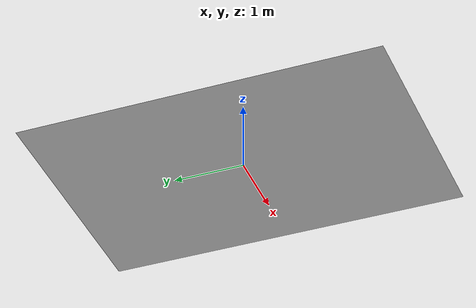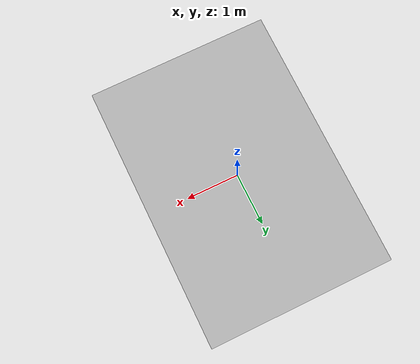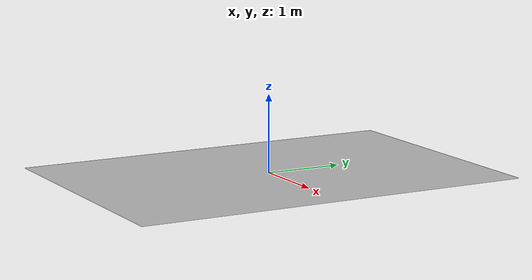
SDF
<?xml version='1.0'?>
<sdf version='1.7'>
  <model name='banner_1'>
    <link name='link'>
      <pose>0 0 0 0 -0 0</pose>
      <visual name='visual'>
        <geometry>
          <box>
            <size>3.51955 5.162762 0</size>
          </box>
        </geometry>
        <material>
          <script>
            <uri>model://banner_1/materials/scripts</uri>
            <uri>model://banner_1/materials/textures</uri>
            <name>ban1_2/Diffuse</name>
          </script>
          <shader type='pixel'/>
        </material>
        <pose>0 0 0 0 -0 0</pose>
        <transparency>0</transparency>
        <cast_shadows>0</cast_shadows>
      </visual>
    </link>
    <static>1</static>
  </model>
</sdf>
